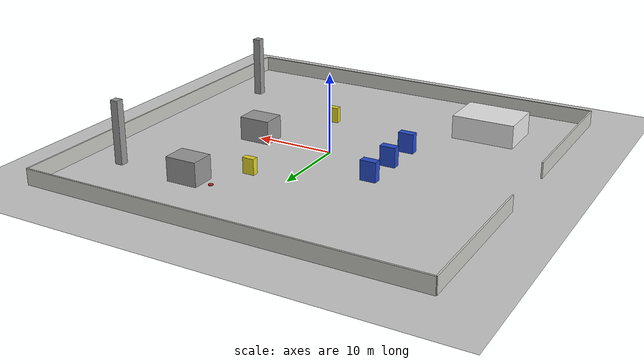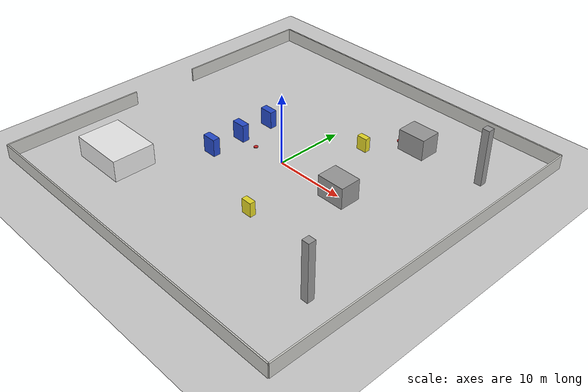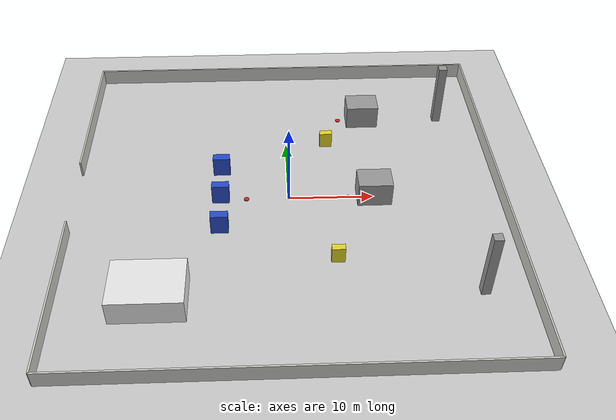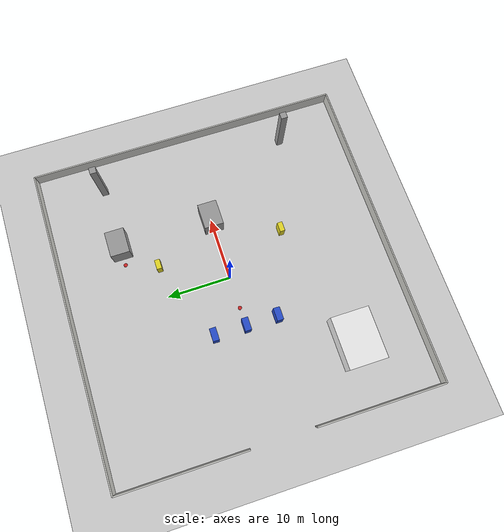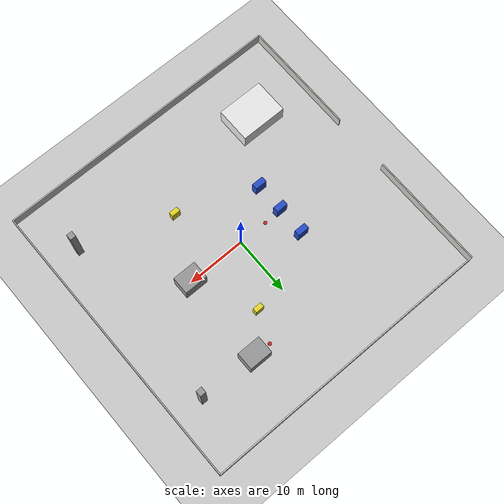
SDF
<?xml version="1.0" ?>
<sdf version="1.6">
  <world name="substation">
    <!-- 太阳光照 -->
    <light name='sun' type='directional'>
      <cast_shadows>1</cast_shadows>
      <pose frame=''>0 0 50 0 -0 0</pose>
      <diffuse>0.8 0.8 0.8 1</diffuse>
      <specular>0.2 0.2 0.2 1</specular>
      <attenuation>
        <range>1000</range>
        <constant>0.9</constant>
        <linear>0.01</linear>
        <quadratic>0.001</quadratic>
      </attenuation>
      <direction>-0.5 0.1 -0.9</direction>
    </light>

    <!-- 重力和物理参数 -->
    <gravity>0 0 -9.8</gravity>
    <magnetic_field>6e-06 2.3e-05 -4.2e-05</magnetic_field>
    <atmosphere type='adiabatic'/>

    <physics name='default_physics' default='0' type='ode'>
      <max_step_size>0.001</max_step_size>
      <real_time_factor>1</real_time_factor>
      <real_time_update_rate>1000</real_time_update_rate>
      <ode>
        <solver>
          <type>quick</type>
          <iters>1000</iters>
          <sor>1.3</sor>
        </solver>
        <constraints>
          <cfm>0</cfm>
          <erp>0.2</erp>
          <contact_max_correcting_vel>100</contact_max_correcting_vel>
          <contact_surface_layer>0.001</contact_surface_layer>
        </constraints>
      </ode>
    </physics>

    <!-- 场景设置 -->
    <scene>
      <ambient>0.4 0.4 0.4 1</ambient>
      <background>0.7 0.7 0.7 1</background>
      <shadows>1</shadows>
    </scene>

    <!-- 地面 -->
    <model name='ground_plane'>
      <static>1</static>
      <link name='link'>
        <collision name='collision'>
          <geometry>
            <plane>
              <normal>0 0 1</normal>
              <size>100 100</size>
            </plane>
          </geometry>
          <surface>
            <friction>
              <ode>
                <mu>0.8</mu>
                <mu2>0.8</mu2>
              </ode>
              <torsional>
                <ode/>
              </torsional>
            </friction>
            <contact>
              <ode/>
            </contact>
            <bounce/>
          </surface>
          <max_contacts>10</max_contacts>
        </collision>
        <visual name='visual'>
          <cast_shadows>0</cast_shadows>
          <geometry>
            <plane>
              <normal>0 0 1</normal>
              <size>100 100</size>
            </plane>
          </geometry>
          <material>
            <script>
              <uri>file://media/materials/scripts/gazebo.material</uri>
              <name>Gazebo/Concrete</name>
            </script>
          </material>
        </visual>
        <self_collide>0</self_collide>
        <enable_wind>0</enable_wind>
        <kinematic>0</kinematic>
      </link>
      <pose frame=''>0 0 0 0 0 0</pose>
    </model>

    <!-- 主变压器1 -->
    <model name='transformer_1'>
      <static>1</static>
      <link name='link'>
        <collision name='collision'>
          <geometry>
            <box>
              <size>4 3 3</size>
            </box>
          </geometry>
          <max_contacts>10</max_contacts>
        </collision>
        <visual name='visual'>
          <geometry>
            <box>
              <size>4 3 3</size>
            </box>
          </geometry>
          <material>
            <script>
              <uri>file://media/materials/scripts/gazebo.material</uri>
              <name>Gazebo/Grey</name>
            </script>
          </material>
        </visual>
        <self_collide>0</self_collide>
        <kinematic>0</kinematic>
      </link>
      <pose frame=''>10 0 1.5 0 0 0</pose>
    </model>

    <!-- 主变压器2 -->
    <model name='transformer_2'>
      <static>1</static>
      <link name='link'>
        <collision name='collision'>
          <geometry>
            <box>
              <size>4 3 3</size>
            </box>
          </geometry>
          <max_contacts>10</max_contacts>
        </collision>
        <visual name='visual'>
          <geometry>
            <box>
              <size>4 3 3</size>
            </box>
          </geometry>
          <material>
            <script>
              <uri>file://media/materials/scripts/gazebo.material</uri>
              <name>Gazebo/Grey</name>
            </script>
          </material>
        </visual>
        <self_collide>0</self_collide>
        <kinematic>0</kinematic>
      </link>
      <pose frame=''>10 15 1.5 0 0 0</pose>
    </model>

    <!-- 配电柜区域 -->
    <model name='control_cabinet_1'>
      <static>1</static>
      <link name='link'>
        <collision name='collision'>
          <geometry>
            <box>
              <size>2 1 2.5</size>
            </box>
          </geometry>
          <max_contacts>10</max_contacts>
        </collision>
        <visual name='visual'>
          <geometry>
            <box>
              <size>2 1 2.5</size>
            </box>
          </geometry>
          <material>
            <script>
              <uri>file://media/materials/scripts/gazebo.material</uri>
              <name>Gazebo/Blue</name>
            </script>
          </material>
        </visual>
        <self_collide>0</self_collide>
        <kinematic>0</kinematic>
      </link>
      <pose frame=''>-8 -5 1.25 0 0 0</pose>
    </model>

    <model name='control_cabinet_2'>
      <static>1</static>
      <link name='link'>
        <collision name='collision'>
          <geometry>
            <box>
              <size>2 1 2.5</size>
            </box>
          </geometry>
          <max_contacts>10</max_contacts>
        </collision>
        <visual name='visual'>
          <geometry>
            <box>
              <size>2 1 2.5</size>
            </box>
          </geometry>
          <material>
            <script>
              <uri>file://media/materials/scripts/gazebo.material</uri>
              <name>Gazebo/Blue</name>
            </script>
          </material>
        </visual>
        <self_collide>0</self_collide>
        <kinematic>0</kinematic>
      </link>
      <pose frame=''>-8 0 1.25 0 0 0</pose>
    </model>

    <model name='control_cabinet_3'>
      <static>1</static>
      <link name='link'>
        <collision name='collision'>
          <geometry>
            <box>
              <size>2 1 2.5</size>
            </box>
          </geometry>
          <max_contacts>10</max_contacts>
        </collision>
        <visual name='visual'>
          <geometry>
            <box>
              <size>2 1 2.5</size>
            </box>
          </geometry>
          <material>
            <script>
              <uri>file://media/materials/scripts/gazebo.material</uri>
              <name>Gazebo/Blue</name>
            </script>
          </material>
        </visual>
        <self_collide>0</self_collide>
        <kinematic>0</kinematic>
      </link>
      <pose frame=''>-8 5 1.25 0 0 0</pose>
    </model>

    <!-- 开关设备 -->
    <model name='switch_gear_1'>
      <static>1</static>
      <link name='link'>
        <collision name='collision'>
          <geometry>
            <box>
              <size>1.5 0.8 2</size>
            </box>
          </geometry>
          <max_contacts>10</max_contacts>
        </collision>
        <visual name='visual'>
          <geometry>
            <box>
              <size>1.5 0.8 2</size>
            </box>
          </geometry>
          <material>
            <script>
              <uri>file://media/materials/scripts/gazebo.material</uri>
              <name>Gazebo/Yellow</name>
            </script>
          </material>
        </visual>
        <self_collide>0</self_collide>
        <kinematic>0</kinematic>
      </link>
      <pose frame=''>5 -10 1 0 0 0</pose>
    </model>

    <model name='switch_gear_2'>
      <static>1</static>
      <link name='link'>
        <collision name='collision'>
          <geometry>
            <box>
              <size>1.5 0.8 2</size>
            </box>
          </geometry>
          <max_contacts>10</max_contacts>
        </collision>
        <visual name='visual'>
          <geometry>
            <box>
              <size>1.5 0.8 2</size>
            </box>
          </geometry>
          <material>
            <script>
              <uri>file://media/materials/scripts/gazebo.material</uri>
              <name>Gazebo/Yellow</name>
            </script>
          </material>
        </visual>
        <self_collide>0</self_collide>
        <kinematic>0</kinematic>
      </link>
      <pose frame=''>5 10 1 0 0 0</pose>
    </model>

    <!-- 围栏 - 外围 -->
    <!-- 北侧围栏 -->
    <model name='fence_north'>
      <static>1</static>
      <link name='link'>
        <collision name='collision'>
          <geometry>
            <box>
              <size>50 0.2 2</size>
            </box>
          </geometry>
          <max_contacts>10</max_contacts>
        </collision>
        <visual name='visual'>
          <geometry>
            <box>
              <size>50 0.2 2</size>
            </box>
          </geometry>
          <material>
            <script>
              <uri>file://media/materials/scripts/gazebo.material</uri>
              <name>Gazebo/CeilingTiled</name>
            </script>
          </material>
        </visual>
        <self_collide>0</self_collide>
        <kinematic>0</kinematic>
      </link>
      <pose frame=''>0 25 1 0 0 0</pose>
    </model>

    <!-- 南侧围栏 -->
    <model name='fence_south'>
      <static>1</static>
      <link name='link'>
        <collision name='collision'>
          <geometry>
            <box>
              <size>50 0.2 2</size>
            </box>
          </geometry>
          <max_contacts>10</max_contacts>
        </collision>
        <visual name='visual'>
          <geometry>
            <box>
              <size>50 0.2 2</size>
            </box>
          </geometry>
          <material>
            <script>
              <uri>file://media/materials/scripts/gazebo.material</uri>
              <name>Gazebo/CeilingTiled</name>
            </script>
          </material>
        </visual>
        <self_collide>0</self_collide>
        <kinematic>0</kinematic>
      </link>
      <pose frame=''>0 -25 1 0 0 0</pose>
    </model>

    <!-- 东侧围栏 -->
    <model name='fence_east'>
      <static>1</static>
      <link name='link'>
        <collision name='collision'>
          <geometry>
            <box>
              <size>0.2 50 2</size>
            </box>
          </geometry>
          <max_contacts>10</max_contacts>
        </collision>
        <visual name='visual'>
          <geometry>
            <box>
              <size>0.2 50 2</size>
            </box>
          </geometry>
          <material>
            <script>
              <uri>file://media/materials/scripts/gazebo.material</uri>
              <name>Gazebo/CeilingTiled</name>
            </script>
          </material>
        </visual>
        <self_collide>0</self_collide>
        <kinematic>0</kinematic>
      </link>
      <pose frame=''>25 0 1 0 0 0</pose>
    </model>

    <!-- 西侧围栏（带入口） -->
    <model name='fence_west_1'>
      <static>1</static>
      <link name='link'>
        <collision name='collision'>
          <geometry>
            <box>
              <size>0.2 20 2</size>
            </box>
          </geometry>
          <max_contacts>10</max_contacts>
        </collision>
        <visual name='visual'>
          <geometry>
            <box>
              <size>0.2 20 2</size>
            </box>
          </geometry>
          <material>
            <script>
              <uri>file://media/materials/scripts/gazebo.material</uri>
              <name>Gazebo/CeilingTiled</name>
            </script>
          </material>
        </visual>
        <self_collide>0</self_collide>
        <kinematic>0</kinematic>
      </link>
      <pose frame=''>-25 15 1 0 0 0</pose>
    </model>

    <model name='fence_west_2'>
      <static>1</static>
      <link name='link'>
        <collision name='collision'>
          <geometry>
            <box>
              <size>0.2 20 2</size>
            </box>
          </geometry>
          <max_contacts>10</max_contacts>
        </collision>
        <visual name='visual'>
          <geometry>
            <box>
              <size>0.2 20 2</size>
            </box>
          </geometry>
          <material>
            <script>
              <uri>file://media/materials/scripts/gazebo.material</uri>
              <name>Gazebo/CeilingTiled</name>
            </script>
          </material>
        </visual>
        <self_collide>0</self_collide>
        <kinematic>0</kinematic>
      </link>
      <pose frame=''>-25 -15 1 0 0 0</pose>
    </model>

    <!-- 高压电塔支架 -->
    <model name='power_tower_1'>
      <static>1</static>
      <link name='link'>
        <collision name='collision'>
          <geometry>
            <box>
              <size>1 1 8</size>
            </box>
          </geometry>
                     <max_contacts>10</max_contacts>
        </collision>
        <visual name='visual'>
          <geometry>
            <box>
              <size>1 1 8</size>
            </box>
          </geometry>
          <material>
            <script>
              <uri>file://media/materials/scripts/gazebo.material</uri>
              <name>Gazebo/Grey</name>
            </script>
          </material>
        </visual>
        <self_collide>0</self_collide>
        <kinematic>0</kinematic>
      </link>
      <pose frame=''>20 -15 4 0 0 0</pose>
    </model>

    <model name='power_tower_2'>
      <static>1</static>
      <link name='link'>
        <collision name='collision'>
          <geometry>
            <box>
              <size>1 1 8</size>
            </box>
          </geometry>
          <max_contacts>10</max_contacts>
        </collision>
        <visual name='visual'>
          <geometry>
            <box>
              <size>1 1 8</size>
            </box>
          </geometry>
          <material>
            <script>
              <uri>file://media/materials/scripts/gazebo.material</uri>
              <name>Gazebo/Grey</name>
            </script>
          </material>
        </visual>
        <self_collide>0</self_collide>
        <kinematic>0</kinematic>
      </link>
      <pose frame=''>20 15 4 0 0 0</pose>
    </model>

    <!-- 控制室建筑 -->
    <model name='control_room'>
      <static>1</static>
      <link name='link'>
        <collision name='collision'>
          <geometry>
            <box>
              <size>8 6 3</size>
            </box>
          </geometry>
          <max_contacts>10</max_contacts>
        </collision>
        <visual name='visual'>
          <geometry>
            <box>
              <size>8 6 3</size>
            </box>
          </geometry>
          <material>
            <script>
              <uri>file://media/materials/scripts/gazebo.material</uri>
              <name>Gazebo/White</name>
            </script>
          </material>
        </visual>
        <self_collide>0</self_collide>
        <kinematic>0</kinematic>
      </link>
      <pose frame=''>-15 -15 1.5 0 0 0</pose>
    </model>

    <!-- 巡检标志点 -->
    <model name='inspection_point_1'>
      <static>1</static>
      <link name='link'>
        <collision name='collision'>
          <geometry>
            <cylinder>
              <radius>0.3</radius>
              <length>0.1</length>
            </cylinder>
          </geometry>
          <max_contacts>10</max_contacts>
        </collision>
        <visual name='visual'>
          <geometry>
            <cylinder>
              <radius>0.3</radius>
              <length>0.1</length>
            </cylinder>
          </geometry>
          <material>
            <script>
              <uri>file://media/materials/scripts/gazebo.material</uri>
              <name>Gazebo/Red</name>
            </script>
          </material>
        </visual>
        <self_collide>0</self_collide>
        <kinematic>0</kinematic>
      </link>
      <pose frame=''>7 0 0.05 0 0 0</pose>
    </model>

    <model name='inspection_point_2'>
      <static>1</static>
      <link name='link'>
        <collision name='collision'>
          <geometry>
            <cylinder>
              <radius>0.3</radius>
              <length>0.1</length>
            </cylinder>
          </geometry>
          <max_contacts>10</max_contacts>
        </collision>
        <visual name='visual'>
          <geometry>
            <cylinder>
              <radius>0.3</radius>
              <length>0.1</length>
            </cylinder>
          </geometry>
          <material>
            <script>
              <uri>file://media/materials/scripts/gazebo.material</uri>
              <name>Gazebo/Red</name>
            </script>
          </material>
        </visual>
        <self_collide>0</self_collide>
        <kinematic>0</kinematic>
      </link>
      <pose frame=''>7 15 0.05 0 0 0</pose>
    </model>

    <model name='inspection_point_3'>
      <static>1</static>
      <link name='link'>
        <collision name='collision'>
          <geometry>
            <cylinder>
              <radius>0.3</radius>
              <length>0.1</length>
            </cylinder>
          </geometry>
          <max_contacts>10</max_contacts>
        </collision>
        <visual name='visual'>
          <geometry>
            <cylinder>
              <radius>0.3</radius>
              <length>0.1</length>
            </cylinder>
          </geometry>
          <material>
            <script>
              <uri>file://media/materials/scripts/gazebo.material</uri>
              <name>Gazebo/Red</name>
            </script>
          </material>
        </visual>
        <self_collide>0</self_collide>
        <kinematic>0</kinematic>
      </link>
      <pose frame=''>-5 0 0.05 0 0 0</pose>
    </model>

  </world>
</sdf>
